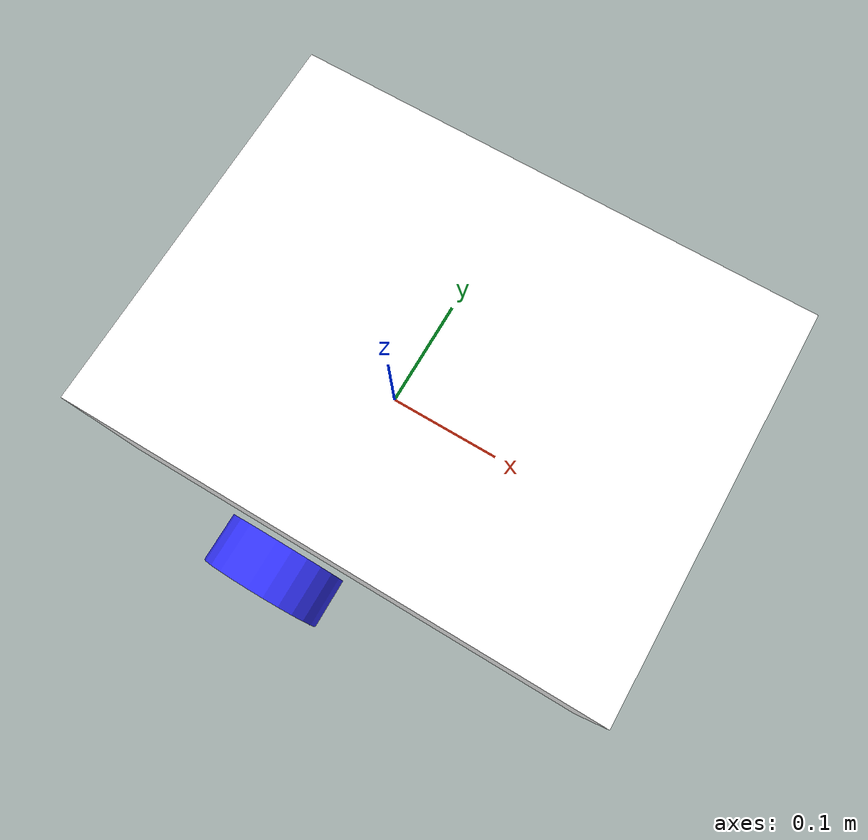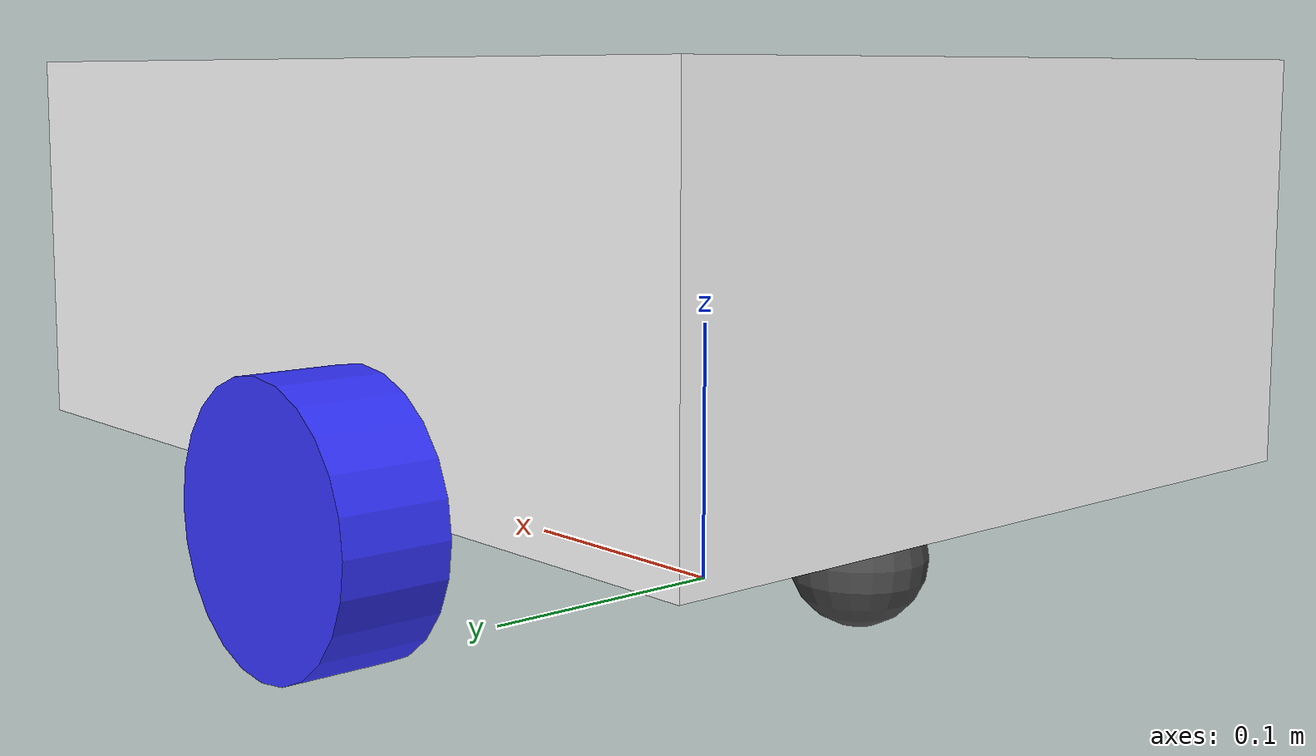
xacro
<?xml version="1.0"?>
<robot xmlns:xacro="http://www.ros.org/wiki/xacro">

  <xacro:include filename="inertial_macros.xacro"/>

  <!-- Material definitions -->
  <material name="white">
    <color rgba="1 1 1 1"/>
  </material>
  <material name="orange">
    <color rgba="1 0.3 0.1 1"/>
  </material>
  <material name="blue">
    <color rgba="0.2 0.2 1 1"/>
  </material>
  <material name="black">
    <color rgba="0.1 0.1 0.1 1"/>
  </material>
  <material name="dark_grey">
    <color rgba="0.3 0.3 0.3 1"/>
  </material>
  <material name="red">
    <color rgba="0.8 0.1 0.1 1"/>
  </material>
  <material name="cyan">
    <color rgba="0.0 0.8 0.8 1"/>
  </material>

  <!-- BASE FOOTPRINT (Ground reference frame) -->
  <link name="base_footprint"/>

  <!-- BASE LINK (Origin of robot coordinate system) -->
  <joint name="base_footprint_joint" type="fixed">
    <parent link="base_footprint"/>
    <child link="base_link"/>
    <origin xyz="0 0 0.05" rpy="0 0 0"/>
  </joint>

  <link name="base_link"/>

  <!-- CHASSIS LINK -->
  <joint name="chassis_joint" type="fixed">
    <parent link="base_link"/>
    <child link="chassis"/>
    <origin xyz="-0.1 0 0"/>
  </joint>

  <link name="chassis">
    <visual>
      <origin xyz="0.15 0 0.075" rpy="0 0 0"/>
      <geometry>
        <box size="0.4 0.3 0.15"/>
      </geometry>
      <material name="white"/>
    </visual>
    <collision>
      <origin xyz="0.15 0 0.075" rpy="0 0 0"/>
      <geometry>
        <box size="0.4 0.3 0.15"/>
      </geometry>
    </collision>
    <xacro:inertial_box mass="2.5" x="0.4" y="0.3" z="0.15">
      <origin xyz="0.15 0 0.075" rpy="0 0 0"/>
    </xacro:inertial_box>
  </link>

  <gazebo reference="chassis">
    <material>Gazebo/White</material>
  </gazebo>

  <!-- LEFT WHEEL -->
  <joint name="left_wheel_joint" type="continuous">
    <parent link="base_link"/>
    <child link="left_wheel"/>
    <origin xyz="0 0.175 0" rpy="-${pi/2} 0 0"/>
    <axis xyz="0 0 1"/>
  </joint>

  <link name="left_wheel">
    <visual>
      <geometry>
        <cylinder radius="0.05" length="0.04"/>
      </geometry>
      <material name="blue"/>
    </visual>
    <collision>
      <geometry>
        <cylinder radius="0.05" length="0.04"/>
      </geometry>
    </collision>
    <xacro:inertial_cylinder mass="0.2" length="0.04" radius="0.05">
      <origin xyz="0 0 0" rpy="0 0 0"/>
    </xacro:inertial_cylinder>
  </link>

  <gazebo reference="left_wheel">
    <material>Gazebo/Blue</material>
    <mu1 value="1.0"/>
    <mu2 value="1.0"/>
    <kp value="10000000.0"/>
    <kd value="1.0"/>
  </gazebo>

  <!-- RIGHT WHEEL -->
  <joint name="right_wheel_joint" type="continuous">
    <parent link="base_link"/>
    <child link="right_wheel"/>
    <origin xyz="0 -0.175 0" rpy="${pi/2} 0 0"/>
    <axis xyz="0 0 -1"/>
  </joint>

  <link name="right_wheel">
    <visual>
      <geometry>
        <cylinder radius="0.05" length="0.04"/>
      </geometry>
      <material name="blue"/>
    </visual>
    <collision>
      <geometry>
        <cylinder radius="0.05" length="0.04"/>
      </geometry>
    </collision>
    <xacro:inertial_cylinder mass="0.2" length="0.04" radius="0.05">
      <origin xyz="0 0 0" rpy="0 0 0"/>
    </xacro:inertial_cylinder>
  </link>

  <gazebo reference="right_wheel">
    <material>Gazebo/Blue</material>
    <mu1 value="1.0"/>
    <mu2 value="1.0"/>
    <kp value="10000000.0"/>
    <kd value="1.0"/>
  </gazebo>

  <!-- FRONT CASTER WHEEL -->
  <joint name="front_caster_wheel_joint" type="fixed">
    <parent link="chassis"/>
    <child link="front_caster_wheel"/>
    <origin xyz="0.28 0 -0.025" rpy="0 0 0"/>
  </joint>

  <link name="front_caster_wheel">
    <visual>
      <geometry>
        <sphere radius="0.025"/>
      </geometry>
      <material name="dark_grey"/>
    </visual>
    <collision>
      <geometry>
        <sphere radius="0.025"/>
      </geometry>
    </collision>
    <xacro:inertial_sphere mass="0.05" radius="0.025">
      <origin xyz="0 0 0" rpy="0 0 0"/>
    </xacro:inertial_sphere>
  </link>

  <gazebo reference="front_caster_wheel">
    <material>Gazebo/DarkGrey</material>
    <mu1 value="0.001"/>
    <mu2 value="0.001"/>
  </gazebo>

  <!-- REAR CASTER WHEEL -->
  <joint name="rear_caster_wheel_joint" type="fixed">
    <parent link="chassis"/>
    <child link="rear_caster_wheel"/>
    <origin xyz="0.02 0 -0.025" rpy="0 0 0"/>
  </joint>

  <link name="rear_caster_wheel">
    <visual>
      <geometry>
        <sphere radius="0.025"/>
      </geometry>
      <material name="dark_grey"/>
    </visual>
    <collision>
      <geometry>
        <sphere radius="0.025"/>
      </geometry>
    </collision>
    <xacro:inertial_sphere mass="0.05" radius="0.025">
      <origin xyz="0 0 0" rpy="0 0 0"/>
    </xacro:inertial_sphere>
  </link>

  <gazebo reference="rear_caster_wheel">
    <material>Gazebo/DarkGrey</material>
    <mu1 value="0.001"/>
    <mu2 value="0.001"/>
  </gazebo>

</robot>

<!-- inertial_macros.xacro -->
<robot xmlns:xacro="http://www.ros.org/wiki/xacro">

  <!-- Inertia calculation macros for standard geometric shapes -->
  <xacro:macro name="inertial_sphere" params="mass radius *origin">
    <inertial>
      <xacro:insert_block name="origin"/>
      <mass value="${mass}" />
      <inertia ixx="${(2/5) * mass * (radius*radius)}" ixy="0.0" ixz="0.0"
               iyy="${(2/5) * mass * (radius*radius)}" iyz="0.0"
               izz="${(2/5) * mass * (radius*radius)}" />
    </inertial>
  </xacro:macro>

  <xacro:macro name="inertial_box" params="mass x y z *origin">
    <inertial>
      <xacro:insert_block name="origin"/>
      <mass value="${mass}" />
      <inertia ixx="${(1/12) * mass * (y*y + z*z)}" ixy="0.0" ixz="0.0"
               iyy="${(1/12) * mass * (x*x + z*z)}" iyz="0.0"
               izz="${(1/12) * mass * (x*x + y*y)}" />
    </inertial>
  </xacro:macro>

  <xacro:macro name="inertial_cylinder" params="mass length radius *origin">
    <inertial>
      <xacro:insert_block name="origin"/>
      <mass value="${mass}" />
      <inertia ixx="${(1/12) * mass * (3*radius*radius + length*length)}" ixy="0.0" ixz="0.0"
               iyy="${(1/12) * mass * (3*radius*radius + length*length)}" iyz="0.0"
               izz="${(1/2) * mass * (radius*radius)}" />
    </inertial>
  </xacro:macro>

</robot>
